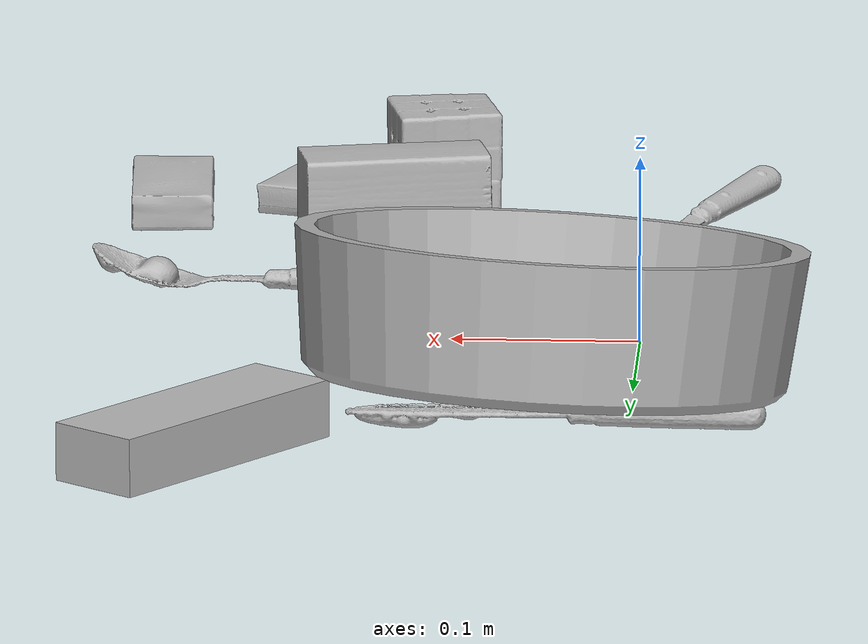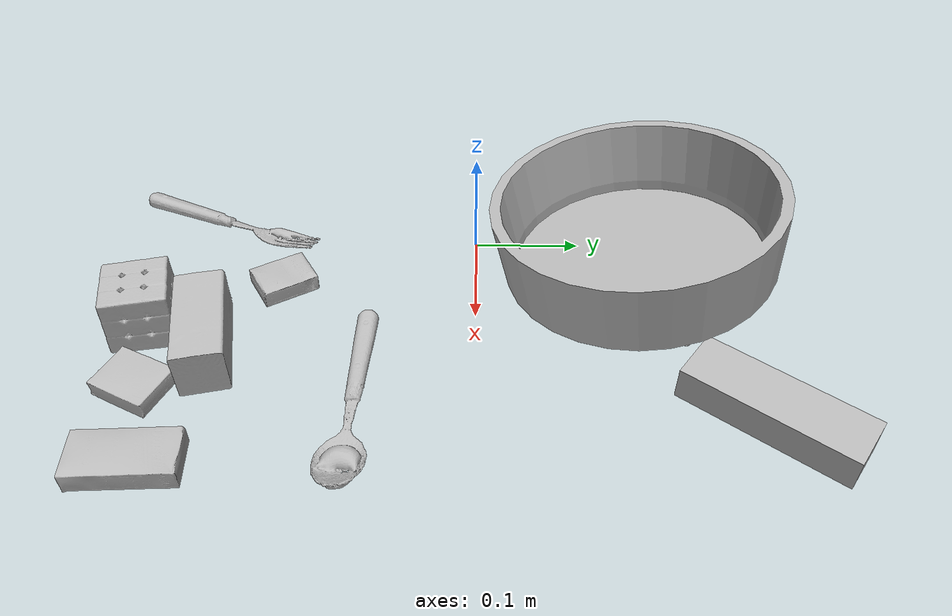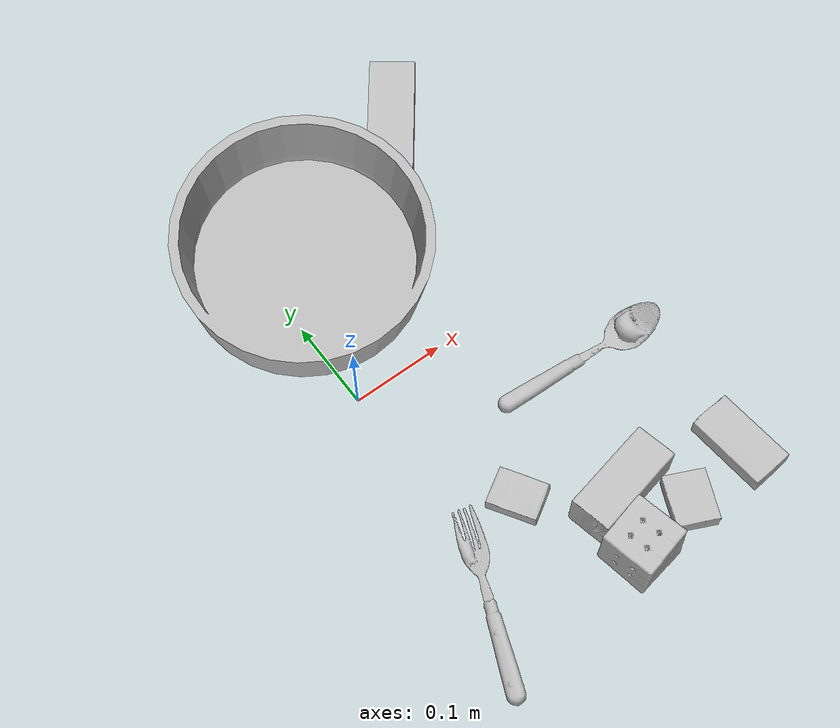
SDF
<sdf version="1.4">
  <world name="default">
    <light name="light1" type="point">
      <pose>0 0 1 0 0 0</pose>
      <diffuse>3 3 3 1</diffuse>
      <specular>3 3 3 1</specular>
    </light>
    <light name="light2" type="point">
      <pose>0 0.5 2 0 0 0</pose>
      <diffuse>1 1 1 1</diffuse>
      <specular>1 1 1 1</specular>
    </light>
    <light name="light3" type="point">
      <pose>0 0.5 2 0 0 0</pose>
      <diffuse>3 3 3 1</diffuse>
      <specular>3 3 3 1</specular>
    </light>
    <scene>
      <ambient>0.7 0.7 0.7</ambient>
    </scene>
    <model name="box11">
      <link name="link_box11">
        <collision name="default">
          <geometry>
            <mesh>
              <uri>model://cracker_box/collision_meshes/collision.obj</uri>
              <scale>0.25 0.25 0.25</scale>
            </mesh>
          </geometry>
          <surface>
            <friction>
              <ode>
                <mu>0.5</mu>
                <mu2>0.5</mu2>
              </ode>
            </friction>
          <contact>
        <ode>
            <max_vel>0</max_vel>
            <min_depth>0.0001</min_depth>
            <kp>1e8</kp>
        </ode>
    </contact></surface>
        </collision>
        <visual name="default">
          <geometry>
            <mesh>
              <uri>model://cracker_box/visual_meshes/visual.dae</uri>
              <scale>0.25 0.25 0.25</scale>
            </mesh>
          </geometry>
        </visual>
        <inertial>
          <mass>0.04448898881673813</mass>
          <pose>0.00023660270380787551 6.358561950037256e-05 -0.000425738311605528 -0.00031620780372907927 -0.011106488668730609 0.002546795468482302</pose>
          <inertia>
            <ixx>7.0725087e-06</ixx>
            <iyy>1.1678099e-05</iyy>
            <izz>1.666572e-05</izz>
            <ixy>0</ixy>
            <ixz>0</ixz>
            <iyz>0</iyz>
          </inertia>
        </inertial>
      </link>
      <pose>0.06230040267109871 -0.17912571132183075 0.009096031077206135 -0.014050508850541658 -0.005016374374593575 -1.0281165595028687</pose>
    </model>
    <model name="box12">
      <link name="link_box12">
        <collision name="default">
          <geometry>
            <mesh>
              <uri>model://wood_block/collision_meshes/collision.obj</uri>
              <scale>0.5 0.5 0.5</scale>
            </mesh>
          </geometry>
          <surface>
            <friction>
              <ode>
                <mu>0.5</mu>
                <mu2>0.5</mu2>
              </ode>
            </friction>
          <contact>
        <ode>
            <max_vel>0</max_vel>
            <min_depth>0.0001</min_depth>
            <kp>1e8</kp>
        </ode>
    </contact></surface>
        </collision>
        <visual name="default">
          <geometry>
            <mesh>
              <uri>model://wood_block/visual_meshes/visual.dae</uri>
              <scale>0.5 0.5 0.5</scale>
            </mesh>
          </geometry>
        </visual>
        <inertial>
          <mass>0.30308207869529724</mass>
          <pose>-2.906657982748584e-06 -0.000285404734313488 0.00013204291462898254 -0.05220975528484064 -0.0051926956083073895 -0.006861380255216688</pose>
          <inertia>
            <ixx>0.00010139242</ixx>
            <iyy>0.00032029866</iyy>
            <izz>0.0003191006</izz>
            <ixy>0</ixy>
            <ixz>0</ixz>
            <iyz>0</iyz>
          </inertia>
        </inertial>
      </link>
      <pose>0.1445252001285553 -0.2347451001405716 0.022527476772665977 -0.015847944685170718 -0.00040188518336432843 -2.935869251009011</pose>
    </model>
    <model name="box13">
      <link name="link_box13">
        <collision name="default">
          <geometry>
            <mesh>
              <uri>model://pudding_box/collision_meshes/collision.obj</uri>
              <scale>0.5 0.5 0.5</scale>
            </mesh>
          </geometry>
          <surface>
            <friction>
              <ode>
                <mu>0.5</mu>
                <mu2>0.5</mu2>
              </ode>
            </friction>
          <contact>
        <ode>
            <max_vel>0</max_vel>
            <min_depth>0.0001</min_depth>
            <kp>1e8</kp>
        </ode>
    </contact></surface>
        </collision>
        <visual name="default">
          <geometry>
            <mesh>
              <uri>model://pudding_box/visual_meshes/visual.dae</uri>
              <scale>0.5 0.5 0.5</scale>
            </mesh>
          </geometry>
        </visual>
        <inertial>
          <mass>0.06630203872919083</mass>
          <pose>0.00024474109522998333 0.00040339428232982755 -0.00025944141088984907 0.0052131027026664865 -0.006603797821229493 0.02007983447369903</pose>
          <inertia>
            <ixx>1.873776e-05</ixx>
            <iyy>1.2606899e-05</iyy>
            <izz>2.7671198e-05</izz>
            <ixy>0</ixy>
            <ixz>0</ixz>
            <iyz>0</iyz>
          </inertia>
        </inertial>
      </link>
      <pose>0.19226214289665222 -0.28329312801361084 0.009862909093499184 0.022346827519991123 -0.011392929816741806 2.71152269547986</pose>
    </model>
    <model name="box21">
      <link name="link_box21">
        <collision name="default">
          <geometry>
            <mesh>
              <uri>model://sugar_box/collision_meshes/collision.obj</uri>
              <scale>0.5 0.5 0.5</scale>
            </mesh>
          </geometry>
          <surface>
            <friction>
              <ode>
                <mu>0.5</mu>
                <mu2>0.5</mu2>
              </ode>
            </friction>
          <contact>
        <ode>
            <max_vel>0</max_vel>
            <min_depth>0.0001</min_depth>
            <kp>1e8</kp>
        </ode>
    </contact></surface>
        </collision>
        <visual name="default">
          <geometry>
            <mesh>
              <uri>model://sugar_box/visual_meshes/visual.dae</uri>
              <scale>0.5 0.5 0.5</scale>
            </mesh>
          </geometry>
        </visual>
        <inertial>
          <mass>0.09398066252470016</mass>
          <pose>0.0005171863595023751 1.924554817378521e-05 -0.00018182402709499002 -0.00040462650409139634 0.0010506636387973133 0.002615378555960767</pose>
          <inertia>
            <ixx>1.9576108e-05</ixx>
            <iyy>6.3274e-05</iyy>
            <izz>7.574653e-05</izz>
            <ixy>0</ixy>
            <ixz>0</ixz>
            <iyz>0</iyz>
          </inertia>
        </inertial>
      </link>
      <pose>0.2705536186695099 -0.2667536735534668 0.011399300768971443 0.000775187633631082 -0.02343239633081191 -1.499126590898209</pose>
    </model>
    <model name="box22">
      <link name="link_box22">
        <collision name="default">
          <geometry>
            <mesh>
              <uri>model://jenga/collision_meshes/collision.obj</uri>
              <scale>1.0 1.0 1.0</scale>
            </mesh>
          </geometry>
          <surface>
            <friction>
              <ode>
                <mu>0.5</mu>
                <mu2>0.5</mu2>
              </ode>
            </friction>
          <contact>
        <ode>
            <max_vel>0</max_vel>
            <min_depth>0.0001</min_depth>
            <kp>1e8</kp>
        </ode>
    </contact></surface>
        </collision>
        <visual name="default">
          <geometry>
            <mesh>
              <uri>model://jenga/visual_meshes/visual.dae</uri>
              <scale>1.0 1.0 1.0</scale>
            </mesh>
          </geometry>
        </visual>
        <inertial>
          <mass>0.2620435655117035</mass>
          <pose>-2.5028555228345795e-07 -0.0001025000965455547 -4.092339804628864e-05 0.0 -7.342154049184251e-07 0.0</pose>
          <inertia>
            <ixx>7.251381e-05</ixx>
            <iyy>0.0004913516</iyy>
            <izz>0.00052455964</izz>
            <ixy>0</ixy>
            <ixz>0</ixz>
            <iyz>0</iyz>
          </inertia>
        </inertial>
      </link>
      <pose>0.21646763384342194 0.24031588435173035 0.015003128908574581 -0.00020777860787635373 -1.0974375736376776e-05 0.9189140629380091</pose>
    </model>
    <model name="box23">
      <link name="link_box23">
        <collision name="default">
          <geometry>
            <mesh>
              <uri>model://rubiks_cube/collision_meshes/collision.obj</uri>
              <scale>1.0 1.0 1.0</scale>
            </mesh>
          </geometry>
          <surface>
            <friction>
              <ode>
                <mu>0.5</mu>
                <mu2>0.5</mu2>
              </ode>
            </friction>
          <contact>
        <ode>
            <max_vel>0</max_vel>
            <min_depth>0.0001</min_depth>
            <kp>1e8</kp>
        </ode>
    </contact></surface>
        </collision>
        <visual name="default">
          <geometry>
            <mesh>
              <uri>model://rubiks_cube/visual_meshes/visual.dae</uri>
              <scale>1.0 1.0 1.0</scale>
            </mesh>
          </geometry>
        </visual>
        <inertial>
          <mass>0.1897622048854828</mass>
          <pose>2.6721043468569405e-05 5.256967051536776e-05 -7.264316082000732e-06 -0.054673156626660294 -0.09814014504853939 -0.034453657529750985</pose>
          <inertia>
            <ixx>0.00010485636</ixx>
            <iyy>0.00010436737</iyy>
            <izz>0.000105725274</izz>
            <ixy>0</ixy>
            <ixz>0</ixz>
            <iyz>0</iyz>
          </inertia>
        </inertial>
      </link>
      <pose>0.12003284692764282 -0.29326656460762024 0.028678972274065018 -2.429808620289869e-06 -9.383622268440527e-07 0.21159700003340032</pose>
    </model>
    <model name="plate1">
      <link name="link_plate1">
        <collision name="default">
          <geometry>
            <mesh>
              <uri>model://pan_tefal/collision_meshes/collision.obj</uri>
              <scale>1.0 1.0 1.0</scale>
            </mesh>
          </geometry>
          <surface>
            <friction>
              <ode>
                <mu>0.5</mu>
                <mu2>0.5</mu2>
              </ode>
            </friction>
          <contact>
        <ode>
            <max_vel>0</max_vel>
            <min_depth>0.0001</min_depth>
            <kp>1e8</kp>
        </ode>
    </contact></surface>
        </collision>
        <visual name="default">
          <geometry>
            <mesh>
              <uri>model://pan_tefal/visual_meshes/visual.dae</uri>
              <scale>1.0 1.0 1.0</scale>
            </mesh>
          </geometry>
        </visual>
        <inertial>
          <mass>0.8768928050994873</mass>
          <pose>-0.00018002584693022072 3.279091833974235e-05 -0.008514934219419956 0.0008190272128915226 -0.0003301349770144462 -0.3318573305948388</pose>
          <inertia>
            <ixx>0.0060531492</ixx>
            <iyy>0.006092174</iyy>
            <izz>0.011142679</izz>
            <ixy>0</ixy>
            <ixz>0</ixz>
            <iyz>0</iyz>
          </inertia>
        </inertial>
      </link>
      <pose>0.0416443794965744 0.14769460260868073 0.05540352314710617 0.07569943122611342 -0.13339425476402242 0.7063428250590209</pose>
    </model>
    <model name="silverware1">
      <link name="link_silverware1">
        <collision name="default">
          <geometry>
            <mesh>
              <uri>model://spoon/collision_meshes/collision.obj</uri>
              <scale>1.0 1.0 1.0</scale>
            </mesh>
          </geometry>
          <surface>
            <friction>
              <ode>
                <mu>0.5</mu>
                <mu2>0.5</mu2>
              </ode>
            </friction>
          <contact>
        <ode>
            <max_vel>0</max_vel>
            <min_depth>0.0001</min_depth>
            <kp>1e8</kp>
        </ode>
    </contact></surface>
        </collision>
        <visual name="default">
          <geometry>
            <mesh>
              <uri>model://spoon/visual_meshes/visual.dae</uri>
              <scale>1.0 1.0 1.0</scale>
            </mesh>
          </geometry>
        </visual>
        <inertial>
          <mass>0.030811671167612076</mass>
          <pose>-0.005526314955204725 -0.0016034170985221863 -0.0007271655485965312 0.03521832474385929 -0.03906585488360169 0.0061506134218646934</pose>
          <inertia>
            <ixx>1.713795e-06</ixx>
            <iyy>0.000117237374</iyy>
            <izz>0.00011808256</izz>
            <ixy>0</ixy>
            <ixz>0</ixz>
            <iyz>0</iyz>
          </inertia>
        </inertial>
      </link>
      <pose>0.2040899097919464 -0.09851039201021194 0.008385264314711094 0.006731802239411747 0.026892984882140272 -0.05548572153288336</pose>
    </model>
    <model name="silverware2">
      <link name="link_silverware2">
        <collision name="default">
          <geometry>
            <mesh>
              <uri>model://fork/collision_meshes/collision.obj</uri>
              <scale>1.0 1.0 1.0</scale>
            </mesh>
          </geometry>
          <surface>
            <friction>
              <ode>
                <mu>0.5</mu>
                <mu2>0.5</mu2>
              </ode>
            </friction>
          <contact>
        <ode>
            <max_vel>0</max_vel>
            <min_depth>0.0001</min_depth>
            <kp>1e8</kp>
        </ode>
    </contact></surface>
        </collision>
        <visual name="default">
          <geometry>
            <mesh>
              <uri>model://fork/visual_meshes/visual.dae</uri>
              <scale>1.0 1.0 1.0</scale>
            </mesh>
          </geometry>
        </visual>
        <inertial>
          <mass>0.016358599066734314</mass>
          <pose>-0.029570044949650764 0.00046588238910771906 0.0003218862693756819 -0.013550710307666105 -0.010977838412833367 0.014453905587424366</pose>
          <inertia>
            <ixx>5.7346136e-07</ixx>
            <iyy>4.270759e-05</iyy>
            <izz>4.29641e-05</izz>
            <ixy>0</ixy>
            <ixz>0</ixz>
            <iyz>0</iyz>
          </inertia>
        </inertial>
      </link>
      <pose>-0.024735935032367706 -0.24819043278694153 0.005713638383895159 -0.18196816755768536 0.024845200151636593 1.180181005417321</pose>
    </model>
    <model name="silverware3">
      <link name="link_silverware3">
        <collision name="default">
          <geometry>
            <mesh>
              <uri>model://knife/collision_meshes/collision.obj</uri>
              <scale>1.0 1.0 1.0</scale>
            </mesh>
          </geometry>
          <surface>
            <friction>
              <ode>
                <mu>0.5</mu>
                <mu2>0.5</mu2>
              </ode>
            </friction>
          <contact>
        <ode>
            <max_vel>0</max_vel>
            <min_depth>0.0001</min_depth>
            <kp>1e8</kp>
        </ode>
    </contact></surface>
        </collision>
        <visual name="default">
          <geometry>
            <mesh>
              <uri>model://knife/visual_meshes/visual.dae</uri>
              <scale>1.0 1.0 1.0</scale>
            </mesh>
          </geometry>
        </visual>
        <inertial>
          <mass>0.02715744450688362</mass>
          <pose>-0.023785259574651718 0.0015275124460458755 5.062024501967244e-05 0.07304743927496513 0.01724841757037888 -0.007409820832494391</pose>
          <inertia>
            <ixx>7.708383e-07</ixx>
            <iyy>0.00010433449</iyy>
            <izz>0.00010458276</izz>
            <ixy>0</ixy>
            <ixz>0</ixz>
            <iyz>0</iyz>
          </inertia>
        </inertial>
      </link>
      <pose>0.03677072748541832 0.1727471649646759 0.00792721938341856 -0.01802891528848669 -0.014226482432849965 0.058715989359109544</pose>
    </model>
  <physics type="ode">
      <max_contacts>50</max_contacts>
      <ode>
        <solver>
          <type>quick</type>
          <iters>75</iters>
        </solver>
        <constraints>
          <contact_max_correcting_vel>0</contact_max_correcting_vel>
          <contact_surface_layer>0</contact_surface_layer>
        </constraints>
      </ode>
    </physics></world>
</sdf>
